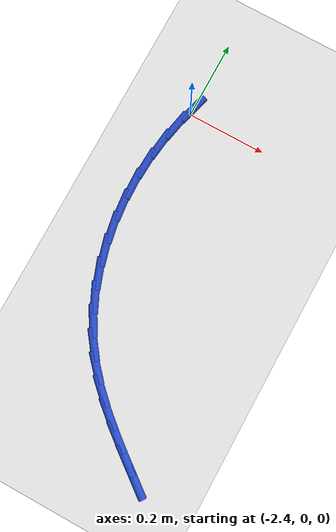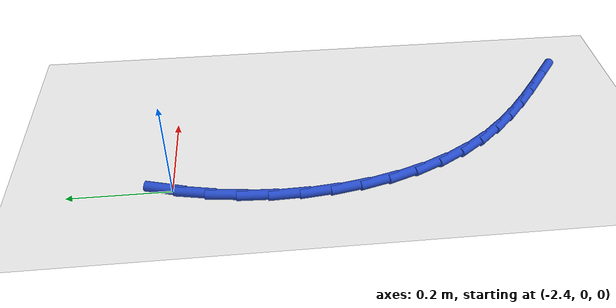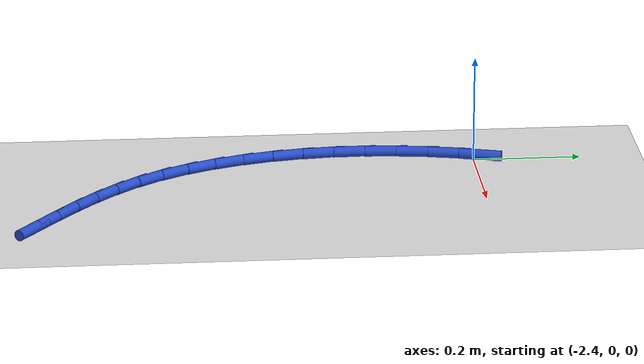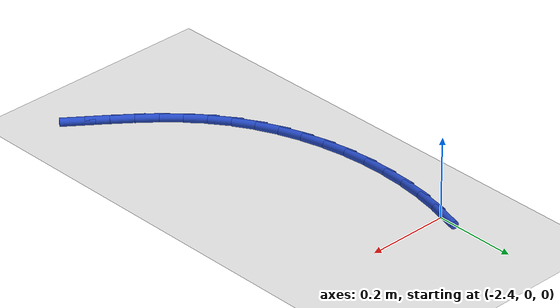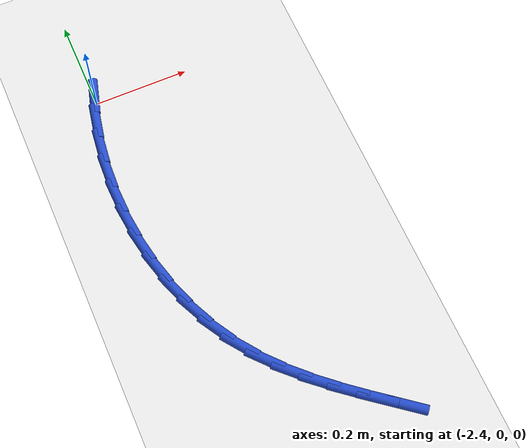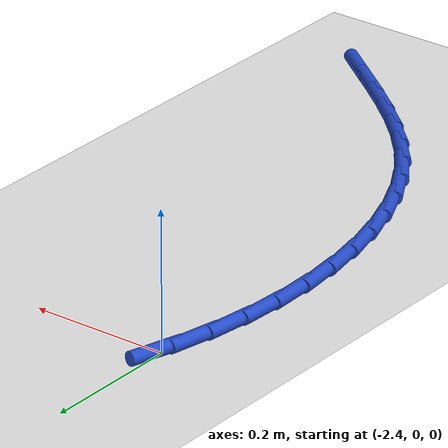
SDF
<sdf version="1.6">
 <world name="default">
  <model name="ground_plane">
   <static>1</static>
   <link name="link">
    <collision name="collision">
     <geometry><plane><normal>0 0 1</normal><size>100 100</size></plane></geometry>
     <surface><friction><ode><mu>100</mu><mu2>50</mu2></ode></friction></surface>
    </collision>
    <visual name="visual">
     <cast_shadows>0</cast_shadows>
     <geometry><plane><normal>0 0 1</normal><size>100 100</size></plane></geometry>
     <material>
      <script><uri>file://media/materials/scripts/gazebo.material</uri><name>Gazebo/WhiteGlow</name></script>
     </material>
    </visual>
   </link>
  </model>
  <model name="line">
   <link name="link_71">
    <pose>-2.400060636283434 0.012557773586718588 0.01 0 1.57 1.2977561322640074</pose>
    <collision name="collision">
     <geometry><cylinder><radius>0.01</radius><length>0.08</length></cylinder></geometry>
    </collision>
    <visual name="visual">
     <material>
      <script><name>Gazebo/Blue</name><uri>file://media/materials/scripts/gazebo.material</uri></script>
     </material>
     <geometry><cylinder><radius>0.01</radius><length>0.08</length></cylinder></geometry>
    </visual>
   </link>
   <link name="link_72">
    <pose>-2.416011267885028 -0.044401859320904895 0.01 0 1.57 1.3755139066346584</pose>
    <collision name="collision">
     <geometry><cylinder><radius>0.01</radius><length>0.08</length></cylinder></geometry>
    </collision>
    <visual name="visual">
     <material>
      <script><name>Gazebo/Blue</name><uri>file://media/materials/scripts/gazebo.material</uri></script>
     </material>
     <geometry><cylinder><radius>0.01</radius><length>0.08</length></cylinder></geometry>
    </visual>
   </link>
   <link name="link_73">
    <pose>-2.4275092697786596 -0.1025303345642172 0.01 0 1.57 1.4514643984773368</pose>
    <collision name="collision">
     <geometry><cylinder><radius>0.01</radius><length>0.08</length></cylinder></geometry>
    </collision>
    <visual name="visual">
     <material>
      <script><name>Gazebo/Blue</name><uri>file://media/materials/scripts/gazebo.material</uri></script>
     </material>
     <geometry><cylinder><radius>0.01</radius><length>0.08</length></cylinder></geometry>
    </visual>
   </link>
   <link name="link_74">
    <pose>-2.434562377476169 -0.1613544645568413 0.01 0 1.57 1.5265221492430665</pose>
    <collision name="collision">
     <geometry><cylinder><radius>0.01</radius><length>0.08</length></cylinder></geometry>
    </collision>
    <visual name="visual">
     <material>
      <script><name>Gazebo/Blue</name><uri>file://media/materials/scripts/gazebo.material</uri></script>
     </material>
     <geometry><cylinder><radius>0.01</radius><length>0.08</length></cylinder></geometry>
    </visual>
   </link>
   <link name="link_75">
    <pose>-2.4371783264893994 -0.22040106171240273 0.01 0 1.57 -1.5399625418408989</pose>
    <collision name="collision">
     <geometry><cylinder><radius>0.01</radius><length>0.08</length></cylinder></geometry>
    </collision>
    <visual name="visual">
     <material>
      <script><name>Gazebo/Blue</name><uri>file://media/materials/scripts/gazebo.material</uri></script>
     </material>
     <geometry><cylinder><radius>0.01</radius><length>0.08</length></cylinder></geometry>
    </visual>
   </link>
   <link name="link_76">
    <pose>-2.4353648523301925 -0.27919693844452603 0.01 0 1.57 -1.463836528066739</pose>
    <collision name="collision">
     <geometry><cylinder><radius>0.01</radius><length>0.08</length></cylinder></geometry>
    </collision>
    <visual name="visual">
     <material>
      <script><name>Gazebo/Blue</name><uri>file://media/materials/scripts/gazebo.material</uri></script>
     </material>
     <geometry><cylinder><radius>0.01</radius><length>0.08</length></cylinder></geometry>
    </visual>
   </link>
   <link name="link_77">
    <pose>-2.429129690510391 -0.3372689071668359 0.01 0 1.57 -1.3857018903241891</pose>
    <collision name="collision">
     <geometry><cylinder><radius>0.01</radius><length>0.08</length></cylinder></geometry>
    </collision>
    <visual name="visual">
     <material>
      <script><name>Gazebo/Blue</name><uri>file://media/materials/scripts/gazebo.material</uri></script>
     </material>
     <geometry><cylinder><radius>0.01</radius><length>0.08</length></cylinder></geometry>
    </visual>
   </link>
   <link name="link_78">
    <pose>-2.4184805765418362 -0.3941437802929578 0.01 0 1.57 -1.3045521455791063</pose>
    <collision name="collision">
     <geometry><cylinder><radius>0.01</radius><length>0.08</length></cylinder></geometry>
    </collision>
    <visual name="visual">
     <material>
      <script><name>Gazebo/Blue</name><uri>file://media/materials/scripts/gazebo.material</uri></script>
     </material>
     <geometry><cylinder><radius>0.01</radius><length>0.08</length></cylinder></geometry>
    </visual>
   </link>
   <link name="link_79">
    <pose>-2.403425245936371 -0.4493483702365147 0.01 0 1.57 -1.2193836283646053</pose>
    <collision name="collision">
     <geometry><cylinder><radius>0.01</radius><length>0.08</length></cylinder></geometry>
    </collision>
    <visual name="visual">
     <material>
      <script><name>Gazebo/Blue</name><uri>file://media/materials/scripts/gazebo.material</uri></script>
     </material>
     <geometry><cylinder><radius>0.01</radius><length>0.08</length></cylinder></geometry>
    </visual>
   </link>
   <link name="link_80">
    <pose>-2.383971434205838 -0.502409489411132 0.01 0 1.57 -1.1292349942059703</pose>
    <collision name="collision">
     <geometry><cylinder><radius>0.01</radius><length>0.08</length></cylinder></geometry>
    </collision>
    <visual name="visual">
     <material>
      <script><name>Gazebo/Blue</name><uri>file://media/materials/scripts/gazebo.material</uri></script>
     </material>
     <geometry><cylinder><radius>0.01</radius><length>0.08</length></cylinder></geometry>
    </visual>
   </link>
   <link name="link_81">
    <pose>-2.3601268768620782 -0.5528539502304342 0.01 0 1.57 -1.0332574866734598</pose>
    <collision name="collision">
     <geometry><cylinder><radius>0.01</radius><length>0.08</length></cylinder></geometry>
    </collision>
    <visual name="visual">
     <material>
      <script><name>Gazebo/Blue</name><uri>file://media/materials/scripts/gazebo.material</uri></script>
     </material>
     <geometry><cylinder><radius>0.01</radius><length>0.08</length></cylinder></geometry>
    </visual>
   </link>
   <link name="link_82">
    <pose>-2.3318993094169347 -0.6002085651080471 0.01 0 1.57 -0.9316572968736174</pose>
    <collision name="collision">
     <geometry><cylinder><radius>0.01</radius><length>0.08</length></cylinder></geometry>
    </collision>
    <visual name="visual">
     <material>
      <script><name>Gazebo/Blue</name><uri>file://media/materials/scripts/gazebo.material</uri></script>
     </material>
     <geometry><cylinder><radius>0.01</radius><length>0.08</length></cylinder></geometry>
    </visual>
   </link>
   <link name="link_83">
    <pose>-2.2993225605934096 -0.6440412706973776 0.01 0 1.57 -0.8375394079106218</pose>
    <collision name="collision">
     <geometry><cylinder><radius>0.01</radius><length>0.08</length></cylinder></geometry>
    </collision>
    <visual name="visual">
     <material>
      <script><name>Gazebo/Blue</name><uri>file://media/materials/scripts/gazebo.material</uri></script>
     </material>
     <geometry><cylinder><radius>0.01</radius><length>0.08</length></cylinder></geometry>
    </visual>
   </link>
   <link name="link_84">
    <pose>-2.262831060730879 -0.6845513723564559 0.01 0 1.57 -0.7624849112829971</pose>
    <collision name="collision">
     <geometry><cylinder><radius>0.01</radius><length>0.08</length></cylinder></geometry>
    </collision>
    <visual name="visual">
     <material>
      <script><name>Gazebo/Blue</name><uri>file://media/materials/scripts/gazebo.material</uri></script>
     </material>
     <geometry><cylinder><radius>0.01</radius><length>0.08</length></cylinder></geometry>
    </visual>
   </link>
   <link name="link_85">
    <pose>-2.2231729096365926 -0.7224325346208994 0.01 0 1.57 -0.7072616555997935</pose>
    <collision name="collision">
     <geometry><cylinder><radius>0.01</radius><length>0.08</length></cylinder></geometry>
    </collision>
    <visual name="visual">
     <material>
      <script><name>Gazebo/Blue</name><uri>file://media/materials/scripts/gazebo.material</uri></script>
     </material>
     <geometry><cylinder><radius>0.01</radius><length>0.08</length></cylinder></geometry>
    </visual>
   </link>
   <link name="link_86">
    <pose>-2.181104587089921 -0.7583916292924147 0.01 0 1.57 -0.6714730307087409</pose>
    <collision name="collision">
     <geometry><cylinder><radius>0.01</radius><length>0.08</length></cylinder></geometry>
    </collision>
    <visual name="visual">
     <material>
      <script><name>Gazebo/Blue</name><uri>file://media/materials/scripts/gazebo.material</uri></script>
     </material>
     <geometry><cylinder><radius>0.01</radius><length>0.08</length></cylinder></geometry>
    </visual>
   </link>
   <link name="link_87">
    <pose>-2.1373825728702367 -0.7931355281727083 0.01 0 1.57 -0.6544707996794008</pose>
    <collision name="collision">
     <geometry><cylinder><radius>0.01</radius><length>0.08</length></cylinder></geometry>
    </collision>
    <visual name="visual">
     <material>
      <script><name>Gazebo/Blue</name><uri>file://media/materials/scripts/gazebo.material</uri></script>
     </material>
     <geometry><cylinder><radius>0.01</radius><length>0.08</length></cylinder></geometry>
    </visual>
   </link>
   <link name="link_88">
    <pose>-2.09276334675691 -0.8273711030634855 0.01 0 1.57 -0.6557431450060648</pose>
    <collision name="collision">
     <geometry><cylinder><radius>0.01</radius><length>0.08</length></cylinder></geometry>
    </collision>
    <visual name="visual">
     <material>
      <script><name>Gazebo/Blue</name><uri>file://media/materials/scripts/gazebo.material</uri></script>
     </material>
     <geometry><cylinder><radius>0.01</radius><length>0.08</length></cylinder></geometry>
    </visual>
   </link>
  </model>
 </world>
</sdf>
